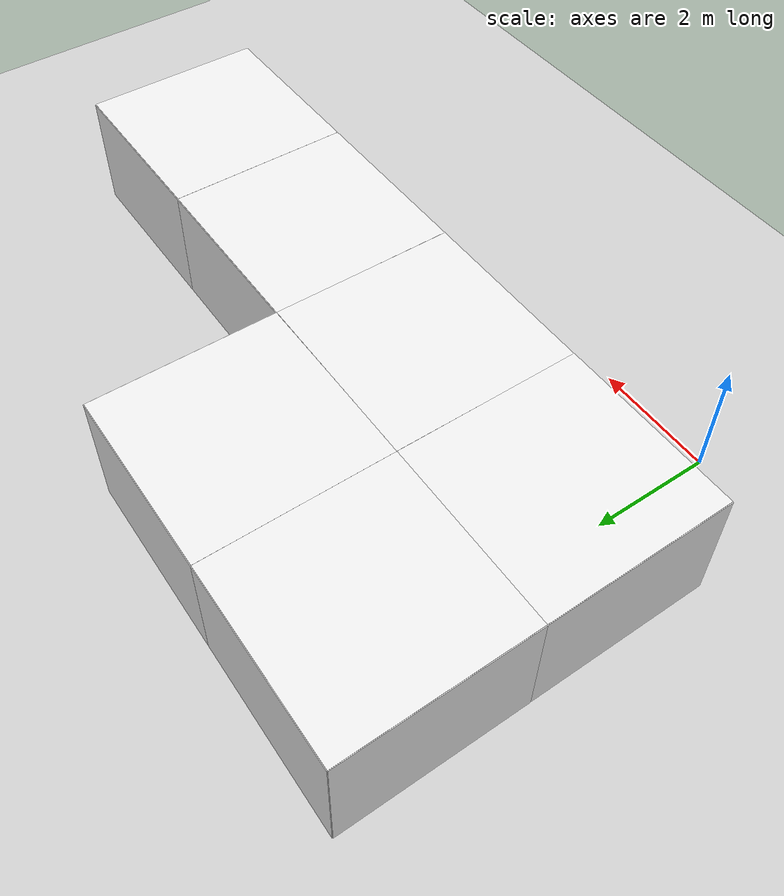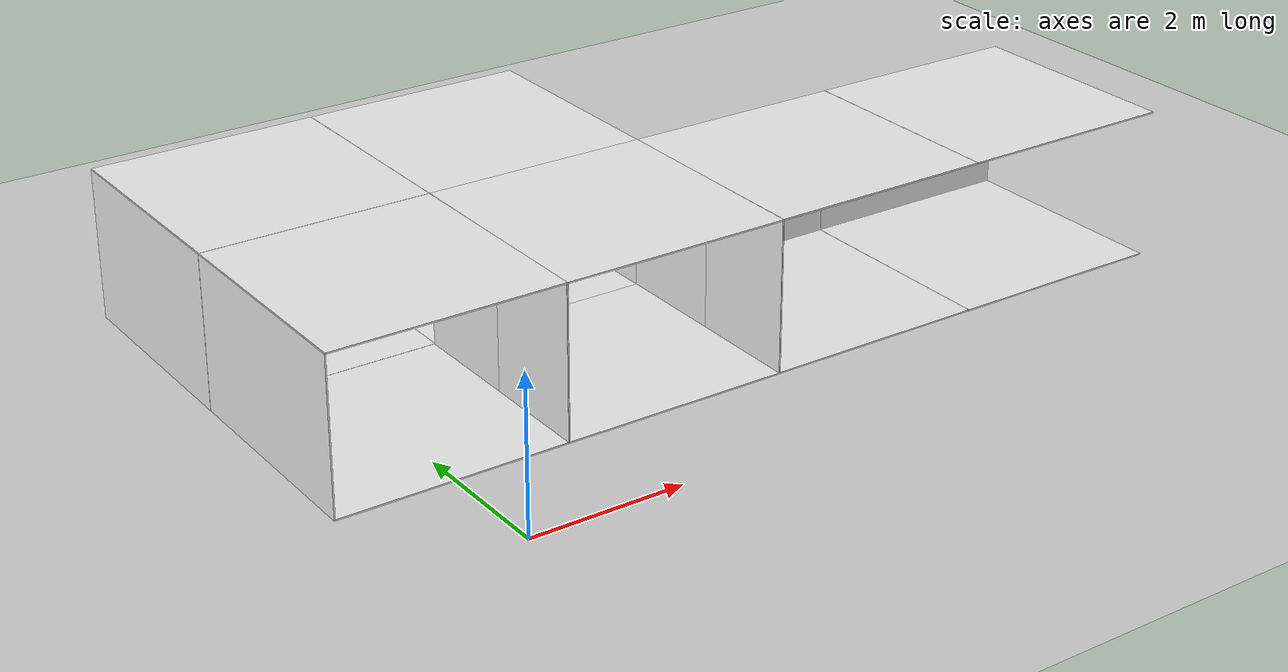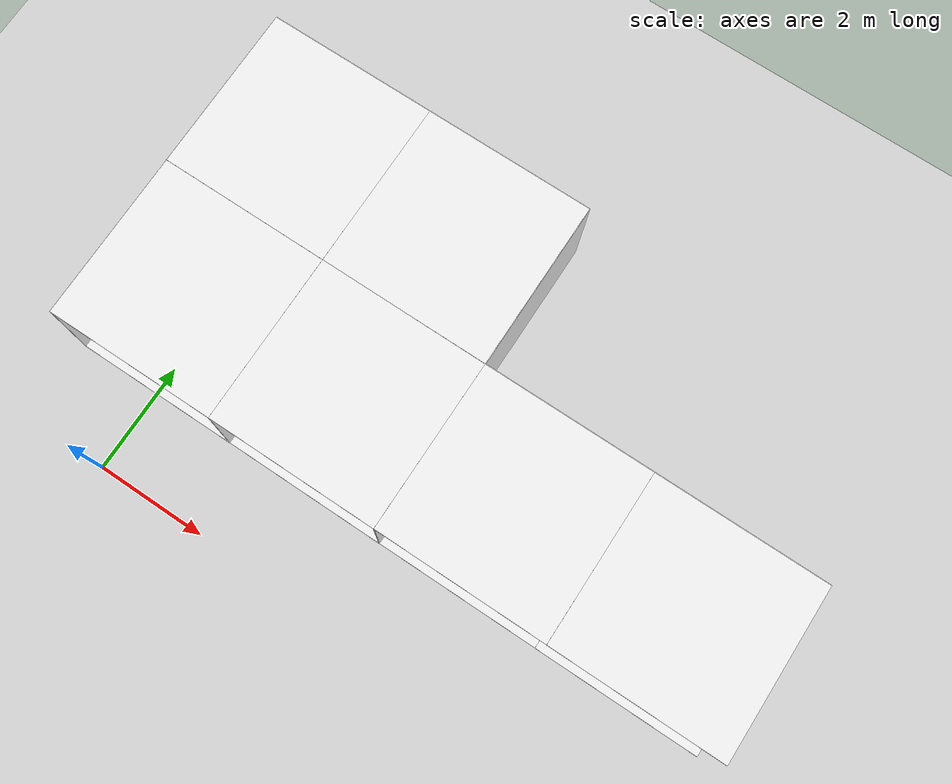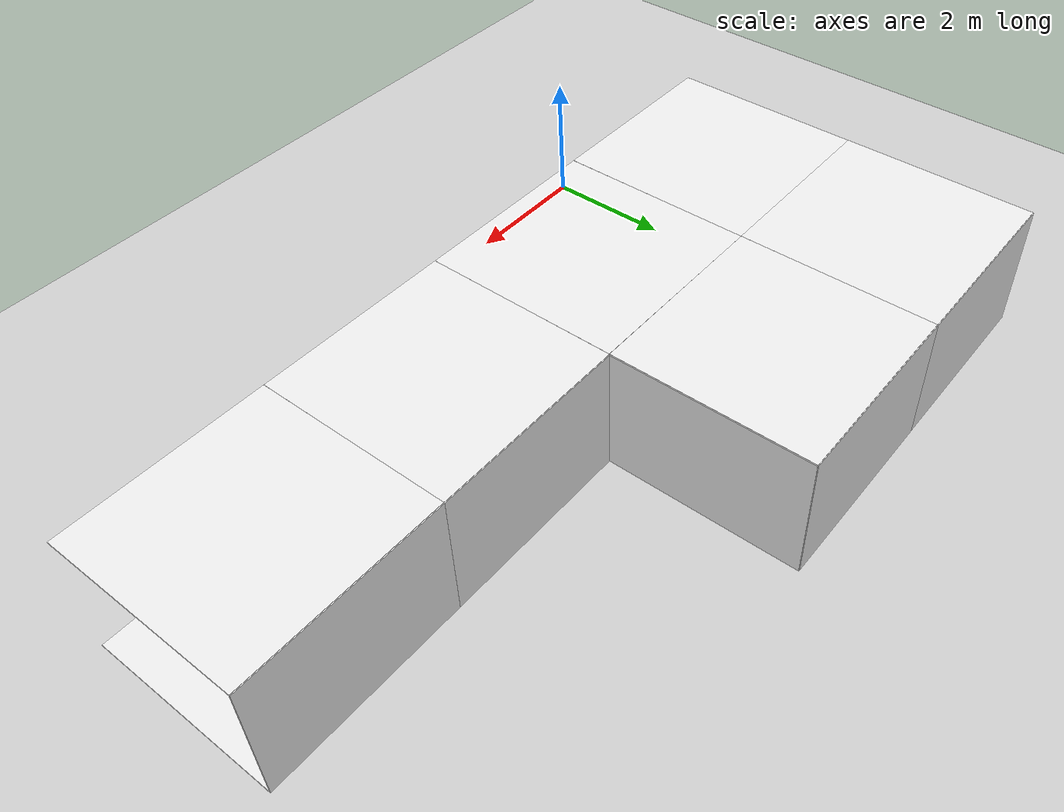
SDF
<sdf version="1.6">
 <world name="default">
  <model name="ground_plane">
   <static>1</static>
   <link name="link">
    <collision name="collision">
     <geometry><plane><normal>0 0 1</normal><size>200 200</size></plane></geometry>
     <surface><friction><ode><mu>100</mu><mu2>50</mu2></ode></friction></surface>
    </collision>
    <visual name="visual">
     <cast_shadows>0</cast_shadows>
     <geometry><plane><normal>0 0 1</normal><size>200 200</size></plane></geometry>
     <material>
      <script><uri>file://media/materials/scripts/gazebo.material</uri><name>Gazebo/Grey</name></script>
     </material>
    </visual>
   </link>
  </model>
  <model name="wall_right_0_1_0_1">
   <static>1</static>
   <pose>1.5 3.0 1.0 0.0 0.0 1.57</pose>
   <link name="link">
    <collision name="collision"><geometry><box><size>3 0.02 2</size></box></geometry></collision>
    <visual name="visual">
     <material>
      <script><name>Gazebo/White</name><uri>file://media/materials/scripts/gazebo.material</uri></script>
     </material>
     <geometry><box><size>3 0.02 2</size></box></geometry>
    </visual>
   </link>
  </model>
  <model name="wall_left_0_1_0_1">
   <static>1</static>
   <pose>-1.5 3.0 1.0 0.0 0.0 1.57</pose>
   <link name="link">
    <collision name="collision"><geometry><box><size>3 0.02 2</size></box></geometry></collision>
    <visual name="visual">
     <material>
      <script><name>Gazebo/White</name><uri>file://media/materials/scripts/gazebo.material</uri></script>
     </material>
     <geometry><box><size>3 0.02 2</size></box></geometry>
    </visual>
   </link>
  </model>
  <model name="wall_top_0_1_0_1">
   <static>1</static>
   <pose>0.0 3.0 2.0 1.57 0.0 0.0</pose>
   <link name="link">
    <collision name="collision"><geometry><box><size>3 0.02 3</size></box></geometry></collision>
    <visual name="visual">
     <material>
      <script><name>Gazebo/White</name><uri>file://media/materials/scripts/gazebo.material</uri></script>
     </material>
     <geometry><box><size>3 0.02 3</size></box></geometry>
    </visual>
   </link>
  </model>
  <model name="wall_bottom_0_1_0_1">
   <static>1</static>
   <pose>0.0 3.0 0.0 1.57 0.0 0.0</pose>
   <link name="link">
    <collision name="collision"><geometry><box><size>3 0.02 3</size></box></geometry></collision>
    <visual name="visual">
     <material>
      <script><name>Gazebo/White</name><uri>file://media/materials/scripts/gazebo.material</uri></script>
     </material>
     <geometry><box><size>3 0.02 3</size></box></geometry>
    </visual>
   </link>
  </model>
  <model name="wall_front_0_2_0_2">
   <static>1</static>
   <pose>0.0 7.5 1.0 0.0 0.0 0.0</pose>
   <link name="link">
    <collision name="collision"><geometry><box><size>3 0.02 2</size></box></geometry></collision>
    <visual name="visual">
     <material>
      <script><name>Gazebo/White</name><uri>file://media/materials/scripts/gazebo.material</uri></script>
     </material>
     <geometry><box><size>3 0.02 2</size></box></geometry>
    </visual>
   </link>
  </model>
  <model name="wall_left_0_2_0_2">
   <static>1</static>
   <pose>-1.5 6.0 1.0 0.0 0.0 1.57</pose>
   <link name="link">
    <collision name="collision"><geometry><box><size>3 0.02 2</size></box></geometry></collision>
    <visual name="visual">
     <material>
      <script><name>Gazebo/White</name><uri>file://media/materials/scripts/gazebo.material</uri></script>
     </material>
     <geometry><box><size>3 0.02 2</size></box></geometry>
    </visual>
   </link>
  </model>
  <model name="wall_top_0_2_0_2">
   <static>1</static>
   <pose>0.0 6.0 2.0 1.57 0.0 0.0</pose>
   <link name="link">
    <collision name="collision"><geometry><box><size>3 0.02 3</size></box></geometry></collision>
    <visual name="visual">
     <material>
      <script><name>Gazebo/White</name><uri>file://media/materials/scripts/gazebo.material</uri></script>
     </material>
     <geometry><box><size>3 0.02 3</size></box></geometry>
    </visual>
   </link>
  </model>
  <model name="wall_bottom_0_2_0_2">
   <static>1</static>
   <pose>0.0 6.0 0.0 1.57 0.0 0.0</pose>
   <link name="link">
    <collision name="collision"><geometry><box><size>3 0.02 3</size></box></geometry></collision>
    <visual name="visual">
     <material>
      <script><name>Gazebo/White</name><uri>file://media/materials/scripts/gazebo.material</uri></script>
     </material>
     <geometry><box><size>3 0.02 3</size></box></geometry>
    </visual>
   </link>
  </model>
  <model name="wall_front_1_2_0_2">
   <static>1</static>
   <pose>4.5 6.0 1.0 0.0 0.0 -1.57</pose>
   <link name="link">
    <collision name="collision"><geometry><box><size>3 0.02 2</size></box></geometry></collision>
    <visual name="visual">
     <material>
      <script><name>Gazebo/White</name><uri>file://media/materials/scripts/gazebo.material</uri></script>
     </material>
     <geometry><box><size>3 0.02 2</size></box></geometry>
    </visual>
   </link>
  </model>
  <model name="wall_left_1_2_0_2">
   <static>1</static>
   <pose>3.0 7.5 1.0 0.0 0.0 0.0</pose>
   <link name="link">
    <collision name="collision"><geometry><box><size>3 0.02 2</size></box></geometry></collision>
    <visual name="visual">
     <material>
      <script><name>Gazebo/White</name><uri>file://media/materials/scripts/gazebo.material</uri></script>
     </material>
     <geometry><box><size>3 0.02 2</size></box></geometry>
    </visual>
   </link>
  </model>
  <model name="wall_top_1_2_0_2">
   <static>1</static>
   <pose>3.0 6.0 2.0 1.57 0.0 -1.57</pose>
   <link name="link">
    <collision name="collision"><geometry><box><size>3 0.02 3</size></box></geometry></collision>
    <visual name="visual">
     <material>
      <script><name>Gazebo/White</name><uri>file://media/materials/scripts/gazebo.material</uri></script>
     </material>
     <geometry><box><size>3 0.02 3</size></box></geometry>
    </visual>
   </link>
  </model>
  <model name="wall_bottom_1_2_0_2">
   <static>1</static>
   <pose>3.0 6.0 0.0 1.57 0.0 -1.57</pose>
   <link name="link">
    <collision name="collision"><geometry><box><size>3 0.02 3</size></box></geometry></collision>
    <visual name="visual">
     <material>
      <script><name>Gazebo/White</name><uri>file://media/materials/scripts/gazebo.material</uri></script>
     </material>
     <geometry><box><size>3 0.02 3</size></box></geometry>
    </visual>
   </link>
  </model>
  <model name="wall_right_1_1_0_1">
   <static>1</static>
   <pose>1.5 3.0 1.0 0.0 0.0 4.71</pose>
   <link name="link">
    <collision name="collision"><geometry><box><size>3 0.02 2</size></box></geometry></collision>
    <visual name="visual">
     <material>
      <script><name>Gazebo/White</name><uri>file://media/materials/scripts/gazebo.material</uri></script>
     </material>
     <geometry><box><size>3 0.02 2</size></box></geometry>
    </visual>
   </link>
  </model>
  <model name="wall_left_1_1_0_1">
   <static>1</static>
   <pose>4.5 3.0 1.0 0.0 0.0 4.71</pose>
   <link name="link">
    <collision name="collision"><geometry><box><size>3 0.02 2</size></box></geometry></collision>
    <visual name="visual">
     <material>
      <script><name>Gazebo/White</name><uri>file://media/materials/scripts/gazebo.material</uri></script>
     </material>
     <geometry><box><size>3 0.02 2</size></box></geometry>
    </visual>
   </link>
  </model>
  <model name="wall_top_1_1_0_1">
   <static>1</static>
   <pose>3.0 3.0 2.0 1.57 0.0 3.14</pose>
   <link name="link">
    <collision name="collision"><geometry><box><size>3 0.02 3</size></box></geometry></collision>
    <visual name="visual">
     <material>
      <script><name>Gazebo/White</name><uri>file://media/materials/scripts/gazebo.material</uri></script>
     </material>
     <geometry><box><size>3 0.02 3</size></box></geometry>
    </visual>
   </link>
  </model>
  <model name="wall_bottom_1_1_0_1">
   <static>1</static>
   <pose>3.0 3.0 0.0 1.57 0.0 3.14</pose>
   <link name="link">
    <collision name="collision"><geometry><box><size>3 0.02 3</size></box></geometry></collision>
    <visual name="visual">
     <material>
      <script><name>Gazebo/White</name><uri>file://media/materials/scripts/gazebo.material</uri></script>
     </material>
     <geometry><box><size>3 0.02 3</size></box></geometry>
    </visual>
   </link>
  </model>
  <model name="wall_front_2_1_0_2">
   <static>1</static>
   <pose>6.0 4.5 1.0 0.0 0.0 0.0</pose>
   <link name="link">
    <collision name="collision"><geometry><box><size>3 0.02 2</size></box></geometry></collision>
    <visual name="visual">
     <material>
      <script><name>Gazebo/White</name><uri>file://media/materials/scripts/gazebo.material</uri></script>
     </material>
     <geometry><box><size>3 0.02 2</size></box></geometry>
    </visual>
   </link>
  </model>
  <model name="wall_left_2_1_0_2">
   <static>1</static>
   <pose>4.5 3.0 1.0 0.0 0.0 1.57</pose>
   <link name="link">
    <collision name="collision"><geometry><box><size>3 0.02 2</size></box></geometry></collision>
    <visual name="visual">
     <material>
      <script><name>Gazebo/White</name><uri>file://media/materials/scripts/gazebo.material</uri></script>
     </material>
     <geometry><box><size>3 0.02 2</size></box></geometry>
    </visual>
   </link>
  </model>
  <model name="wall_top_2_1_0_2">
   <static>1</static>
   <pose>6.0 3.0 2.0 1.57 0.0 0.0</pose>
   <link name="link">
    <collision name="collision"><geometry><box><size>3 0.02 3</size></box></geometry></collision>
    <visual name="visual">
     <material>
      <script><name>Gazebo/White</name><uri>file://media/materials/scripts/gazebo.material</uri></script>
     </material>
     <geometry><box><size>3 0.02 3</size></box></geometry>
    </visual>
   </link>
  </model>
  <model name="wall_bottom_2_1_0_2">
   <static>1</static>
   <pose>6.0 3.0 0.0 1.57 0.0 0.0</pose>
   <link name="link">
    <collision name="collision"><geometry><box><size>3 0.02 3</size></box></geometry></collision>
    <visual name="visual">
     <material>
      <script><name>Gazebo/White</name><uri>file://media/materials/scripts/gazebo.material</uri></script>
     </material>
     <geometry><box><size>3 0.02 3</size></box></geometry>
    </visual>
   </link>
  </model>
  <model name="wall_left_3_1_0_4">
   <static>1</static>
   <pose>9.0 4.5 1.0 0.0 0.0 0.0</pose>
   <link name="link">
    <collision name="collision"><geometry><box><size>3 0.02 2</size></box></geometry></collision>
    <visual name="visual">
     <material>
      <script><name>Gazebo/White</name><uri>file://media/materials/scripts/gazebo.material</uri></script>
     </material>
     <geometry><box><size>3 0.02 2</size></box></geometry>
    </visual>
   </link>
  </model>
  <model name="wall_top_3_1_0_4">
   <static>1</static>
   <pose>9.0 3.0 2.0 1.57 0.0 -1.57</pose>
   <link name="link">
    <collision name="collision"><geometry><box><size>3 0.02 3</size></box></geometry></collision>
    <visual name="visual">
     <material>
      <script><name>Gazebo/White</name><uri>file://media/materials/scripts/gazebo.material</uri></script>
     </material>
     <geometry><box><size>3 0.02 3</size></box></geometry>
    </visual>
   </link>
  </model>
  <model name="wall_bottom_3_1_0_4">
   <static>1</static>
   <pose>9.0 3.0 0.0 1.57 0.0 -1.57</pose>
   <link name="link">
    <collision name="collision"><geometry><box><size>3 0.02 3</size></box></geometry></collision>
    <visual name="visual">
     <material>
      <script><name>Gazebo/White</name><uri>file://media/materials/scripts/gazebo.material</uri></script>
     </material>
     <geometry><box><size>3 0.02 3</size></box></geometry>
    </visual>
   </link>
  </model>
 </world>
</sdf>
